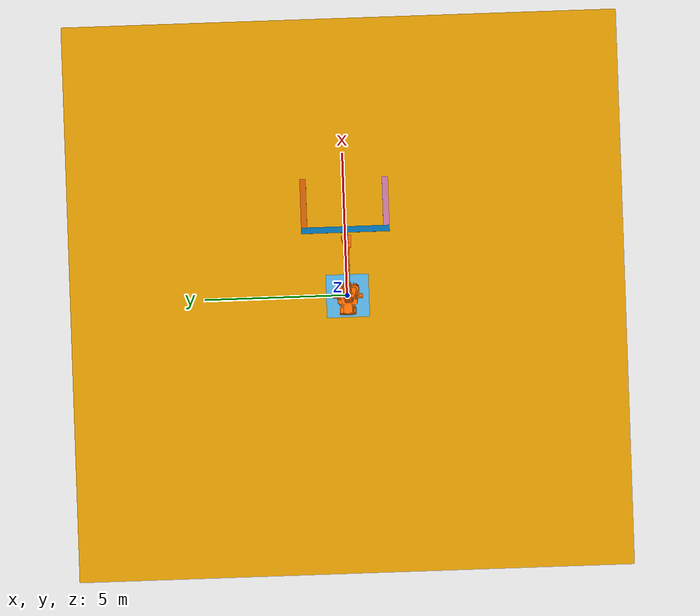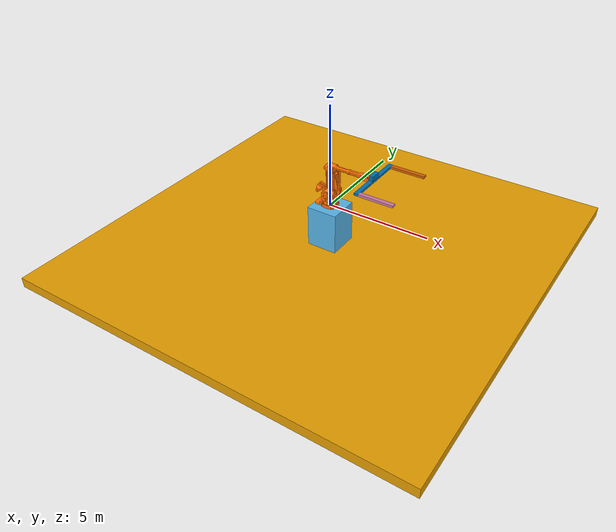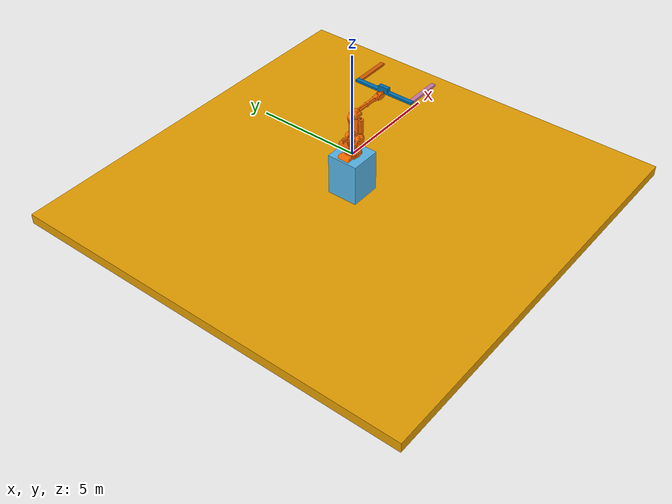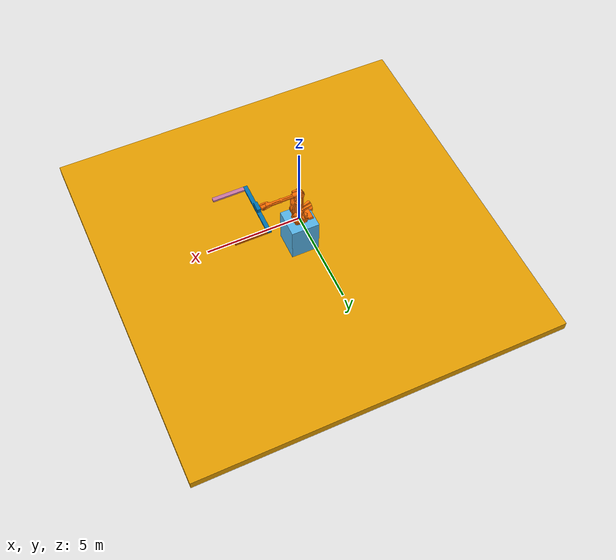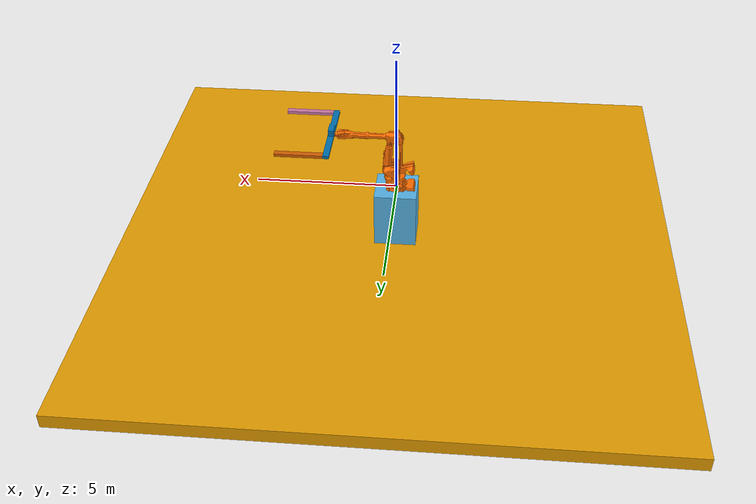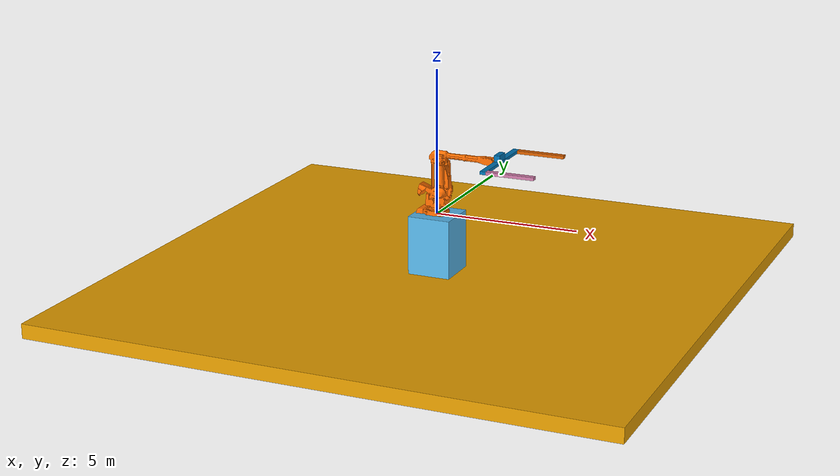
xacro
<?xml version="1.0" ?>
<robot name="irb6400r" xmlns:xacro="http://wiki.ros.org/xacro">
  <xacro:include filename="$(find wire_cutting)/urdf/irb6400r_macro.xacro" />
  <xacro:include filename="$(find wire_cutting)/urdf/carbon_hotwire_macro.xacro" />

  <xacro:irb6400r_robot prefix=""/>
  <xacro:carbon_hotwire prefix=""/>

   <joint type="fixed" name="tool">
  	<parent link="tool0"/>
  	<child link="carbon_hotwire_mount"/>
  	<origin xyz="0 0 0" rpy="0 0 3.14"/>
  </joint>
</robot>

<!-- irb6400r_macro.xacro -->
<robot xmlns:xacro="http://ros.org/wiki/xacro">

  <xacro:macro name="irb6400r_robot" params="prefix">

    <!-- link list -->
   <link name="${prefix}floor" >
      <collision>
        <geometry>
          <convex_mesh filename="package://wire_cutting/meshes/Floor.stl" convert="true"/>
        </geometry>
        <material name="yellow"/>
      </collision>
      <visual>
        <geometry>
          <mesh filename="package://wire_cutting/meshes/Floor.stl" />
        </geometry>>
      </visual>
   </link>
    <link name="${prefix}pedestal" >
      <collision>
        <geometry>
          <convex_mesh filename="package://wire_cutting/meshes/Pedestal.stl" convert="true"/>
        </geometry>
        <material name="yellow"/>
      </collision>
      <visual>
        <geometry>
          <mesh filename="package://wire_cutting/meshes/Pedestal.stl" />
        </geometry>>
      </visual>
   </link>

    <link name="${prefix}base_link">
      <collision name="collision">
        <geometry>
          <convex_mesh filename="package://wire_cutting/meshes/irb6400r/collision/base_link.stl" convert="true"/>
        </geometry>
        <material name="yellow">
          <color rgba="0 1 1 1"/>
        </material>
      </collision>
      <visual name="visual">
        <geometry>
          <mesh filename="package://wire_cutting/meshes/irb6400r/visual/base_link.stl"/>
        </geometry>
        <material name="orange">
          <color rgba="1 0.43 0 1"/>
        </material>
      </visual>
    </link>
    <link name="${prefix}link_1">
      <collision name="collision">
        <geometry>
          <convex_mesh filename="package://wire_cutting/meshes/irb6400r/collision/link_1.stl" convert="true"/>
        </geometry>
        <material name="yellow"/>
      </collision>
      <visual name="visual">
        <geometry>
          <mesh filename="package://wire_cutting/meshes/irb6400r/visual/link_1.stl"/>
        </geometry>
        <material name="orange"/>
      </visual>
    </link>
    <link name="${prefix}link_2">
      <collision name="collision">
        <geometry>
          <convex_mesh filename="package://wire_cutting/meshes/irb6400r/collision/link_2.stl" convert="true"/>
        </geometry>
        <material name="yellow"/>
      </collision>
      <visual name="visual">
        <geometry>
          <mesh filename="package://wire_cutting/meshes/irb6400r/visual/link_2.stl"/>
        </geometry>
        <material name="orange"/>
      </visual>
    </link>
    <link name="${prefix}link_3">
      <collision name="collision">
        <geometry>
          <convex_mesh filename="package://wire_cutting/meshes/irb6400r/collision/link_3.stl" convert="true"/>
        </geometry>
        <material name="yellow"/>
      </collision>
      <visual name="visual">
        <geometry>
          <mesh filename="package://wire_cutting/meshes/irb6400r/visual/link_3.stl"/>
        </geometry>
        <material name="orange"/>
      </visual>
    </link>

    <link name="${prefix}link_4">
      <collision name="collision">
        <geometry>
          <convex_mesh filename="package://wire_cutting/meshes/irb6400r/collision/link_4.stl" convert="true"/>
        </geometry>
        <material name="yellow"/>
      </collision>
      <visual name="visual">
        <geometry>
          <mesh filename="package://wire_cutting/meshes/irb6400r/visual/link_4.stl"/>
        </geometry>
        <material name="orange"/>
      </visual>
    </link>
    <link name="${prefix}link_5">
      <collision name="collision">
        <geometry>
          <convex_mesh filename="package://wire_cutting/meshes/irb6400r/collision/link_5.stl" convert="true"/>
        </geometry>
        <material name="yellow"/>
      </collision>
      <visual name="visual">
        <geometry>
          <mesh filename="package://wire_cutting/meshes/irb6400r/visual/link_5.stl"/>
        </geometry>
        <material name="orange"/>
      </visual>
    </link>
    <link name="${prefix}link_6">
      <collision name="collision">
        <geometry>
          <convex_mesh filename="package://wire_cutting/meshes/irb6400r/collision/link_6.stl" convert="true"/>
        </geometry>
        <material name="yellow"/>
      </collision>
      <visual name="visual">
        <geometry>
          <mesh filename="package://wire_cutting/meshes/irb6400r/visual/link_6.stl"/>
        </geometry>
        <material name="orange"/>
      </visual>
    </link>
    <link name="${prefix}tool0"/>

    <joint type="revolute" name="${prefix}joint_1">
      <origin xyz="0 0 0.27" rpy="0 0 0"/>
      <axis xyz="0 0 1"/>
      <parent link="${prefix}base_link"/>
      <child link="${prefix}link_1"/>
      <limit effort="0" lower="-3.14" upper="3.14" velocity="1.57"/>
    </joint>
    <joint type="revolute" name="${prefix}joint_2">
      <origin xyz="0.240 0. 0.53" rpy="0 0 0"/>
      <axis xyz="0 1 0"/>
      <parent link="${prefix}link_1"/>
      <child link="${prefix}link_2"/>
      <limit effort="0" lower="-1.22" upper="1.48" velocity="1.22"/>
    </joint>

    <joint type="revolute" name="${prefix}joint_3">
      <origin xyz="0 0 1.05" rpy="0 0 0"/>
      <axis xyz="0 1 0"/>
      <parent link="${prefix}link_2"/>
      <child link="${prefix}link_3"/>
      <limit effort="0" lower="-3.14" upper="3.14" velocity="1.22"/> <!-- Limits defined by constraints due to parallel link-->
    </joint>
    <joint type="revolute" name="${prefix}joint_4">
      <origin xyz="0.0 0 0.225" rpy="0 0 0"/>
      <axis xyz="1 0 0"/>
      <parent link="${prefix}link_3"/>
      <child link="${prefix}link_4"/>
      <limit effort="0" lower="-5.23" upper="5.23" velocity="1.91"/>
    </joint>
    <joint type="revolute" name="${prefix}joint_5">
      <origin xyz="1.725 0 0 " rpy="0 0 0"/>
      <axis xyz="0 1 0"/>
      <parent link="${prefix}link_4"/>
      <child link="${prefix}link_5"/>
      <limit effort="0" lower="-2.094" upper="2.094" velocity="1.91"/>
    </joint>
     <!-- TODO verify 0.145! -->
    <joint type="revolute" name="${prefix}joint_6">
      <origin xyz="0.145 0 0 " rpy="0 0 0"/>
      <axis xyz="1 0 0"/>
      <parent link="${prefix}link_5"/>
      <child link="${prefix}link_6"/>
      <limit effort="0" lower="-5.23" upper="5.23" velocity="1.91"/>
    </joint>
    <joint type="fixed" name="${prefix}joint_6-tool0">
      <parent link="${prefix}link_6"/>
      <child link="${prefix}tool0"/>
      <origin xyz=".037 0 0" rpy="0 1.57079632679 0"/>
    </joint>

    <!-- ROS base_link to ABB World Coordinates transform -->
    <link name="${prefix}base" />
    <joint name="${prefix}base_link-base" type="fixed">
      <origin xyz="0 0 0" rpy="0 0 0"/>
      <parent link="${prefix}base_link"/>
      <child link="${prefix}base"/>
    </joint>
    <joint name="${prefix}base_pedestal" type="fixed">
      <origin xyz="0 0 0" rpy="0 0 0"/>
      <parent link="${prefix}base"/>
      <child link="${prefix}pedestal"/>
    </joint>
    <joint name="${prefix}base_fllor" type="fixed">
      <origin xyz="0 0 0" rpy="0 0 0"/>
      <parent link="${prefix}base"/>
      <child link="${prefix}floor"/>
    </joint>
  </xacro:macro>
</robot>

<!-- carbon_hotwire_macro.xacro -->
<robot xmlns:xacro="http://wiki.ros.org/xacro">
  <xacro:macro name="carbon_hotwire" params="prefix">

    <link name="${prefix}carbon_hotwire_mount" />

    <link name="${prefix}carbon_hotwire" >
      <collision>
        <geometry>
          <convex_mesh filename="package://wire_cutting/meshes/CH_top.stl" convert="true"/>
        </geometry>
        <material name="yellow"/>
      </collision>
      <visual>
        <geometry>
          <mesh filename="package://wire_cutting/meshes/CH_top.stl" />
        </geometry>>
      </visual>
    </link>

   <joint type="fixed" name="mount">
  	<parent link="carbon_hotwire_mount"/>
  	<child link="carbon_hotwire"/>
  	<origin xyz="0 0 1.861" rpy="0 0 0"/>
  </joint>

  <link name="${prefix}CH_left" >
      <collision>
        <geometry>
          <convex_mesh filename="package://wire_cutting/meshes/CH_left.stl" convert="true"/>
        </geometry>
        <material name="yellow"/>
      </collision>
      <visual>
        <geometry>
          <mesh filename="package://wire_cutting/meshes/CH_left.stl" />
        </geometry>>
      </visual>
  </link>
  <link name="${prefix}CH_right" >
      <collision>
        <geometry>
          <convex_mesh filename="package://wire_cutting/meshes/CH_right.stl" convert="true"/>
        </geometry>
        <material name="yellow"/>
      </collision>
      <visual>
        <geometry>
          <mesh filename="package://wire_cutting/meshes/CH_right.stl" />
        </geometry>>
      </visual>
  </link>

  <joint type="fixed" name="top-left">
  	<parent link="carbon_hotwire"/>
  	<child link="CH_left"/>
  	<origin xyz="0 0 0" rpy="0 0 0"/>
  </joint>
  <joint type="fixed" name="top-right">
  	<parent link="carbon_hotwire"/>
  	<child link="CH_right"/>
  	<origin xyz="0 0 0" rpy="0 0 0"/>
  </joint>

  </xacro:macro>
</robot>
